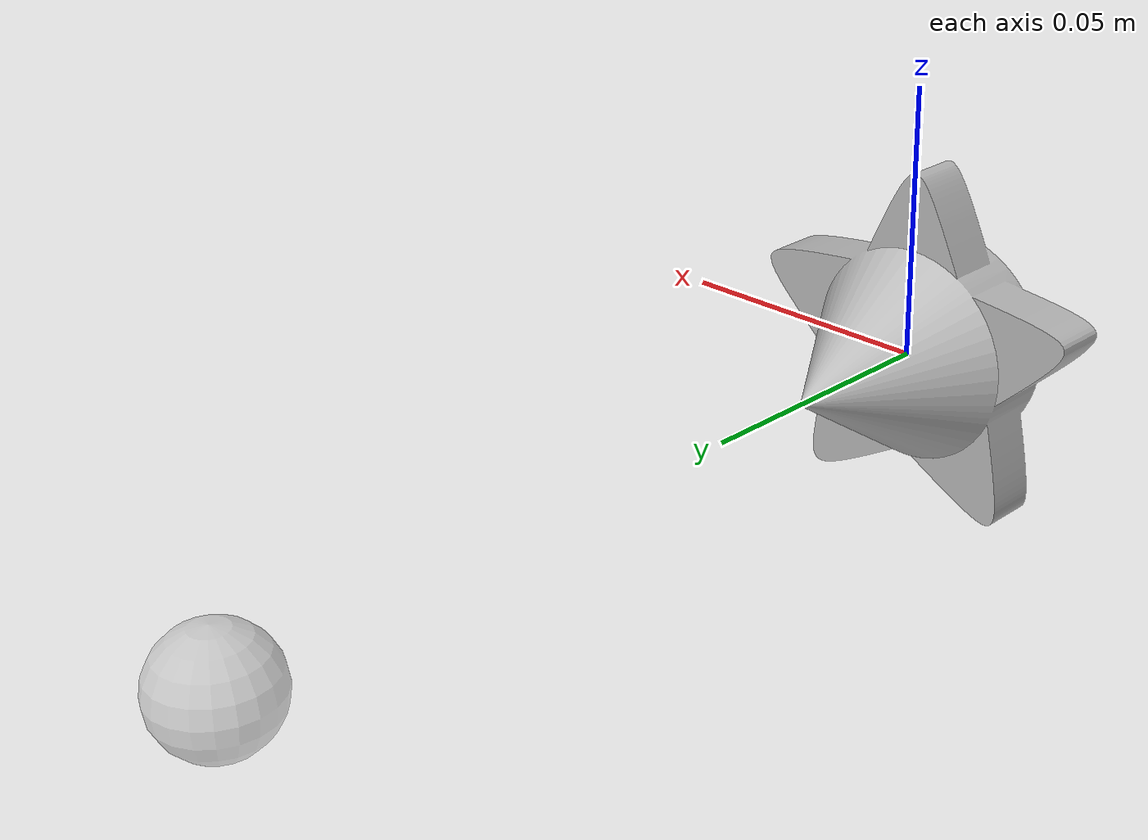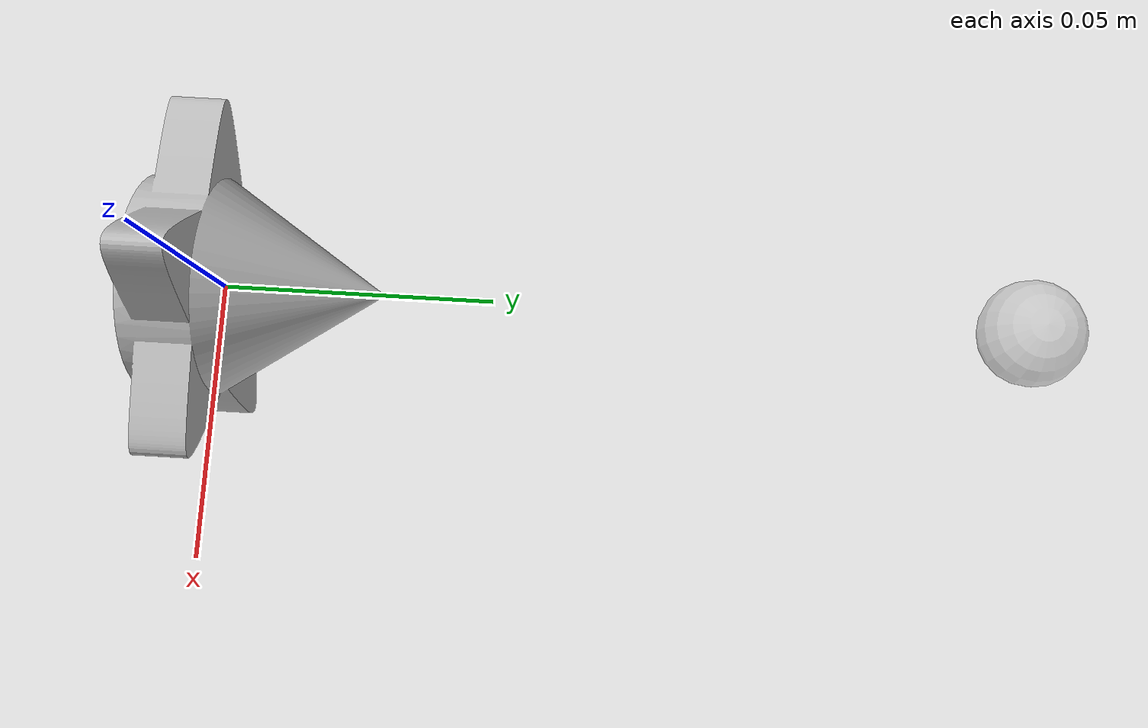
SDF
<?xml version="1.0"?>
<sdf version="1.11">
  <model name="chassis_v4">
    <link name="base_link">
      <inertial>
        <mass>8.135</mass>
        <inertia>
          <ixx>0.35032999999999995</ixx>
          <ixy>0</ixy>
          <ixz>0</ixz>
          <iyy>0.35032999999999995</iyy>
          <iyz>0</iyz>
          <izz>0.61250000000000006</izz>
        </inertia>
      </inertial>
      <collision name="tube_1__body1_collision">
        <pose relative_to="__model__">0.0 0.0 0.0 -0.0 -1.5707963267948966 0</pose>
        <geometry>
          <box>
            <size>0.1651 0.29845 0.1651</size>
          </box>
        </geometry>
      </collision>
      <visual name="tube_1__body1_visual">
        <geometry>
          <mesh>
            <scale>0.01 0.01 0.01</scale>
            <uri>meshes/tube_1/body1_visual.obj</uri>
          </mesh>
        </geometry>
      </visual>
      <visual name="battery_box_1__body1_visual">
        <geometry>
          <mesh>
            <scale>0.01 0.01 0.01</scale>
            <uri>meshes/battery_box_1/body1_visual.obj</uri>
          </mesh>
        </geometry>
      </visual>

      <!-- Sensors -->
      <sensor name="imu_sensor" type="imu">
        <!-- Point IMU backwards wrt front of Blobfish. -->
        <pose relative_to="__model__" degrees="true">0 0 0 0 0 -90</pose>
        <always_on>1</always_on>
        <update_rate>800</update_rate>
        <topic>blobfish/imu</topic>

        <!-- VN-100 is NED, but ours is pointed backwards. -->
        <imu>
          <orientation_reference_frame>
            <localization>CUSTOM</localization>
            <custom_rpy>0 0 0</custom_rpy>
          </orientation_reference_frame>
        </imu>
      </sensor>
      <sensor name="rgbd_camera" type="rgbd_camera">
        <pose relative_to="__model__" degrees="true">0 0.15 0 0 0 90</pose>
        <always_on>1</always_on>
        <update_rate>30</update_rate>
        <topic>blobfish/rgbd</topic>

        <camera>
          <image>
            <width>640</width>
            <height>480</height>
          </image>
        </camera>
      </sensor>
      <sensor name="depth_sensor" type="altimeter">
        <always_on>1</always_on>
        <update_rate>800</update_rate>
        <topic>blobfish/depth</topic>
      </sensor>

      <!-- Visualization of Sensor Placements -->
      <visual name="viz_rgbd_camera">
        <pose relative_to="__model__" degrees="true">0 0.15 0 0 0 90</pose>
        <cast_shadows>false</cast_shadows>
        <transparency>0.5</transparency>
        <geometry>
          <sphere>
            <radius>0.01</radius>
          </sphere>
        </geometry>
      </visual>
    </link>
  </model>
</sdf>
